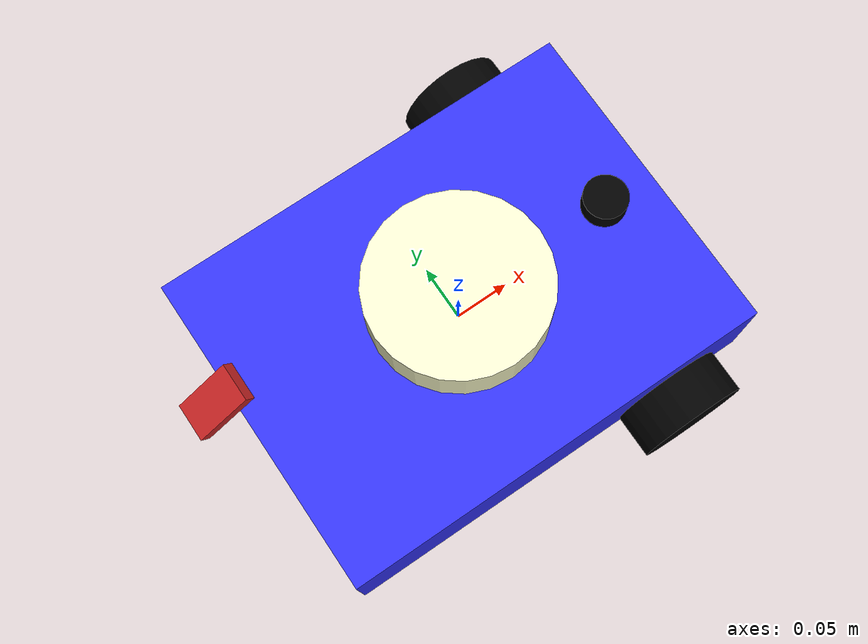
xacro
<?xml version="1.0"?>
<robot xmlns:xacro="http://www.ros.org/wiki/xacro" name="mybot">

    <xacro:include filename="$(find mybot)/urdf/mybot_core.xacro"/>
    <xacro:include filename="$(find mybot)/urdf/lidar.xacro"/>
    <!--xacro:include filename="$(find mybot)/urdf/camera.xacro"/-->
    <xacro:include filename="$(find mybot)/urdf/depth_camera.xacro"/>
    <xacro:include filename="$(find mybot)/urdf/projector.xacro"/>
</robot>

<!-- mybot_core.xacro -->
<robot xmlns:xacro="http://www.ros.org/wiki/xacro">

    <xacro:include filename="$(find mybot)/urdf/inertial_macros.xacro"/>

    <xacro:property name="chassis_mass" value="0.5"/>
    <xacro:property name="chassis_width" value="0.3"/>
    <xacro:property name="chassis_height" value="0.1"/>
    <xacro:property name="chassis_depth" value="0.4"/>

    <xacro:property name="wheel_radius" value="0.05"/>
    <xacro:property name="wheel_length" value="0.04"/>
    <xacro:property name="wheel_mass" value="0.1"/>
    <xacro:property name="wheel_offset_x" value="0.12"/>
    <xacro:property name="wheel_offset_y" value="${(chassis_width+wheel_length)/2}"/>
    <xacro:property name="wheel_offset_z" value="-0.03"/>

    <xacro:property name="caster_radius" value="0.02"/>
    <xacro:property name="caster_mass" value="0.5"/>
    <xacro:property name="caster_offset_x" value="-0.18"/>
    <xacro:property name="caster_offset_z" value="${wheel_offset_z-wheel_radius+caster_radius}"/>

    <xacro:property name="top_mass" value="0.05"/>
    <xacro:property name="top_length" value="0.1"/>
    <xacro:property name="top_radius" value="0.08"/>

    <xacro:property name="ext_radius" value="0.02"/>
    <xacro:property name="ext_length" value="0.1"/>
    <xacro:property name="ext_mass" value="0.02"/>

    <material name="white">
        <color rgba="1.0 1.0 0.8 1"/>
    </material>

    <material name="blue">
        <color rgba="0.2 0.2 1 1"/>
    </material>

    <material name="black">
        <color rgba="0.0 0.0 0.0 1.0"/>
    </material>

    <!--base link-->
    <link name="mybot/base_link">

    </link>

    <!--chassis link-->
    <link name="mybot/chassis_link">
        <xacro:inertial_box mass="${chassis_mass}" x="${chassis_depth}" y="${chassis_width}" z="${chassis_height}">
            <origin xyz="0.0 0.0 0.0"/>
        </xacro:inertial_box>
        <visual>
            <origin xyz="0.0 0.0 0.0"/>
            <geometry>
                <box size="${chassis_depth} ${chassis_width} ${chassis_height}"/>
            </geometry>
            <material name="blue"/>
        </visual>
        <collision>
            <origin xyz="0.0 0.0 0.0"/>
            <geometry>
                <box size="${chassis_depth} ${chassis_width} ${chassis_height}"/>
            </geometry>
        </collision>
    </link>

    <joint name="mybot/chassis_joint" type="fixed">
        <origin xyz="0.0 0.0 0.0" rpy="0.0 0.0 0.0"/>
        <parent link="mybot/base_link"/>
        <child link="mybot/chassis_link"/>
    </joint>

    <gazebo reference="mybot/chassis_link">
        <material>Gazebo/Blue</material>
    </gazebo>

    <!--wheel xacro-->
    <xacro:macro name="wheel" params="name side x y">
        <link name="mybot/wheel_${name}_link">
            <xacro:inertial_cylinder mass="${wheel_mass}" length="${wheel_length}" radius="${wheel_radius}">
                <origin xyz="0.0 0.0 0.0" rpy="0.0 0.0 0.0"/>
            </xacro:inertial_cylinder>
            <visual>
                <origin xyz="0.0 0.0 0.0" rpy="0.0 0.0 0.0"/>
                <geometry>
                    <cylinder radius="${wheel_radius}" length="${wheel_length}"/>
                </geometry>
                <material name="black"/>
            </visual>
            <collision>
                <origin xyz="0.0 0.0 0.0" rpy="0.0 0.0 0.0"/>
                <geometry>
                    <cylinder radius="${wheel_radius}" length="${wheel_length}"/>
                </geometry>
            </collision>
        </link>

        <joint name="mybot/wheel_${name}_joint" type="continuous">
            <origin xyz="${x} ${y} ${wheel_offset_z}" rpy="${-side*pi/2} 0.0 0.0"/>
            <parent link="mybot/base_link"/>
            <child link="mybot/wheel_${name}_link"/>
            <axis xyz="0.0 0.0 ${side}"/>
        </joint>

        <!--wheel motor-->
        <transmission name="mybot/wheel_${name}_joint_trans">
            <type>transmission/SimpleTransmission</type>
            <joint name="mybot/wheel_${name}_joint">
                <hardwareInterface>hardware_interface/VelocityJointInterface</hardwareInterface>
            </joint>
            <actuator name="mybot/wheel_${name}_joint_motor">
                <hardwareInterface>hardware_interface/VelocityJointInterface</hardwareInterface>
                <mechanicalReduction>1</mechanicalReduction>
            </actuator>
        </transmission>

        <gazebo reference="mybot/wheel_${name}_link">
            <material>Gazebo/Black</material>
        </gazebo>

    </xacro:macro>

    <!--wheel creating using xacro:macro-->
    <xacro:wheel name="right" side="-1" x="${wheel_offset_x}" y="${wheel_offset_y}"/>
    <xacro:wheel name="left" side="1" x="${wheel_offset_x}" y="${-wheel_offset_y}"/>

    <!--caster wheel-->
    <link name="mybot/caster_link">
        <visual>
            <geometry>
                <sphere radius="${caster_radius}"/>
            </geometry>
            <material name="white"/>
        </visual>
        <collision>
            <geometry>
                <sphere radius="${caster_radius}"/>
            </geometry>
        </collision>
        <xacro:inertial_sphere mass="${caster_mass}" radius="${caster_radius}">
            <origin xyz="0 0 0" rpy="0 0 0"/>
        </xacro:inertial_sphere>
    </link>

    <joint name="mybot/caster_joint" type="fixed">
        <parent link="mybot/chassis_link"/>
        <child link="mybot/caster_link"/>
        <origin xyz="${caster_offset_x} 0 ${caster_offset_z}"/>
    </joint>

    <gazebo reference="mybot/caster_link">
        <material>Gazebo/White</material>
        <mu1>0.0001</mu1>
        <mu2>0.0001</mu2>
    </gazebo>

    <!--top link-->
    <link name="mybot/top_link">
        <xacro:inertial_cylinder mass="${top_mass}" length="${top_length}" radius="${top_radius}">
            <origin xyz="0.0 0.0 0.0"/>
        </xacro:inertial_cylinder>
        <visual>
            <geometry>
                <cylinder radius="${top_radius}" length="${top_length}"/>
            </geometry>
            <material name="white"/>
        </visual>
        <collision>
            <geometry>
                <cylinder radius="${top_radius}" length="${top_length}"/>
            </geometry>
        </collision>
    </link>

    <joint name="mybot/top_joint" type="fixed">
        <origin xyz="0.0 0.0 ${chassis_height/2}"/>
        <parent link="mybot/chassis_link"/>
        <child link="mybot/top_link"/>
    </joint>

    <gazebo reference="mybot/top_link">
        <material>Gazebo/White</material>
    </gazebo>

    <!--extension link-->
    <link name="mybot/ext_link">
        <xacro:inertial_cylinder mass="${ext_mass}" length="${ext_length}" radius="${ext_radius}">
            <origin xyz="0.0 0.0 0.0"/>
        </xacro:inertial_cylinder>
        <visual>
            <origin xyz="0.0 0.0 0.0"/>
            <geometry>
                <cylinder radius="${ext_radius}" length="${ext_length}"/>
            </geometry>
            <material name="black"/>
        </visual>
        <collision>
            <origin xyz="0.0 0.0 0.0"/>
            <geometry>
                <cylinder radius="${ext_radius}" length="${ext_length}"/>
            </geometry>
        </collision>
    </link>

    <joint name="mybot/ext_joint" type="prismatic">
        <origin xyz="${top_radius/2} 0.0 ${-top_length/4}"/>
        <parent link="mybot/top_link"/>
        <child link="mybot/ext_link"/>
        <axis xyz="0.0 0.0 1.0"/>
        <limit lower="0.0" upper="${ext_length}" effort="100.0" velocity="0.2"/>
    </joint>

    <!--extension motor-->
    <transmission name="mybot/ext_joint_trans">
        <type>transmission/SimpleTransmission</type>
        <joint name="mybot/ext_joint">
            <hardwareInterface>hardware_interface/PositionJointInterface</hardwareInterface>
        </joint>
        <actuator name="mybot/ext_joint_motor">
            <hardwareInterface>hardware_interface/PositionJointInterface</hardwareInterface>
            <mechanicalReduction>1</mechanicalReduction>
        </actuator>
    </transmission>

    <gazebo reference="mybot/ext_link">
        <material>Gazebo/Black</material>
    </gazebo>

    <!--gazebo ros control plugin-->
    <gazebo>
        <plugin name="gazebo_ros_control" filename="libgazebo_ros_control.so">
            <robotSimType>gazebo_ros_control/DefaultRobotHWSim</robotSimType>
            <legacyModeNS>true</legacyModeNS>
        </plugin>
    </gazebo>

</robot>

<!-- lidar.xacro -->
<robot xmlns:xacro="http://www.ros.org/wiki/xacro">

    <!--lidar link-->
    <xacro:include filename="$(find mybot)/urdf/inertial_macros.xacro"/>

    <link name="mybot/lidar_link">
        <xacro:inertial_cylinder mass="0.02" length="0.02" radius="0.02">
            <origin xyz="0 0 0" rpy="0 0 0"/>
        </xacro:inertial_cylinder>
        <visual>
            <origin xyz="0.0 0.0 0.0"/>
            <geometry>
                <cylinder radius="0.02" length="0.02"/>
            </geometry>
            <material name="black"/>
        </visual>
        <collision>
            <origin xyz="0.0 0.0 0.0"/>
            <geometry>
                <cylinder radius="0.02" length="0.02"/>
            </geometry>
        </collision>
    </link>

    <joint name="mybot/lidar_joint" type="fixed">
        <origin xyz="0.15 0.0 0.06" rpy="0.0 0.0 0.0"/>
        <parent link="mybot/chassis_link"/>
        <child link="mybot/lidar_link"/>
    </joint>

    <gazebo reference="mybot/lidar_link">
        <material>Gazebo/Black</material>

        <sensor name="mybot/lidar" type="ray">
            <pose> 0 0 0 0 0 0 </pose>
            <visualize>false</visualize>
            <update_rate>10</update_rate>
            <ray>
                <scan>
                    <horizontal>
                        <samples>180</samples>
                        <min_angle>-1.57</min_angle>
                        <max_angle>1.57</max_angle>
                    </horizontal>
                </scan>
                <range>
                    <min>0.3</min>
                    <max>12</max>
                </range>
            </ray>

            <plugin name="lidar_controller" filename="libgazebo_ros_laser.so">
                <topicName>laser/scan</topicName>
                <outputType>sensor_msgs/LaserScan</outputType>
                <frameName>lidar_link</frameName>
            </plugin>
        </sensor>
    </gazebo>

</robot>

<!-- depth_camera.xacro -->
<robot xmlns:xacro="http://www.ros.org/wiki/xacro">

    <xacro:include filename="$(find mybot)/urdf/inertial_macros.xacro"/>

    <!--camera link-->
    <link name="mybot/camera_link">
        <xacro:inertial_box mass="0.03" x="0.01" y="0.02" z="0.01">
            <origin xyz="0 0 0" rpy="0 0 0"/>
        </xacro:inertial_box>
        <visual>
            <origin xyz="0.0 0.0 0.0"/>
            <geometry>
                <box size="0.01 0.02 0.01"/>
            </geometry>
            <material name="black"/>
        </visual>
        <collision>
            <origin xyz="0.0 0.0 0.0"/>
            <geometry>
                <box size="0.01 0.02 0.01"/>
            </geometry>
        </collision>
    </link>

    <joint name="mybot/camera_joint" type="fixed">
        <origin xyz="0.205 0.0 0.0" rpy="0.0 0.0 0.0"/>
        <parent link="mybot/chassis_link"/>
        <child link="mybot/camera_link"/>
    </joint>

    <!--camera optical link-->
    <link name="mybot/camera_optical_link"></link>

    <joint name="mybot/camera_optical_joint" type="fixed">
        <origin xyz="0.0 0.0 0.0" rpy="-1.57 0.0 -1.57"/>
        <parent link="mybot/camera_link"/>
        <child link="mybot/camera_optical_link"/>
    </joint>

    <!-- depth camera -->
    <gazebo reference="mybot/camera_link">
        <material>Gazebo/Black</material>
        <sensor type="depth" name="depth_camera">
            <update_rate>30.0</update_rate>
            <visualize>true</visualize>
            <camera>
                <horizontal_fov>1.3962634</horizontal_fov>
                <image>
                    <width>800</width>
                    <height>800</height>
                    <format>B8G8R8</format>
                </image>
                <clip>
                    <near>0.02</near>
                    <far>8.0</far>
                </clip>
                <noise>
                    <type>gaussian</type>
                    <mean>0.0</mean>
                    <stddev>0.007</stddev>
                </noise>
            </camera>

            <plugin name="depth_camera_controller" filename="libgazebo_ros_openni_kinect.so">
                <cameraName>depth_camera</cameraName>
                <frameName>camera_optical_link</frameName>
                <min_depth>0.1</min_depth>
                <max_depth>100</max_depth>
            </plugin>
        </sensor>
    </gazebo>
</robot>

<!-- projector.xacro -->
<robot xmlns:xacro="http://www.ros.org/wiki/xacro">

    <xacro:include filename="$(find mybot)/urdf/inertial_macros.xacro"/>

    <!--projector link-->
    <link name="mybot/projector_link">
        <xacro:inertial_box mass="0.03" x="0.01" y="0.03" z="0.05">
            <origin xyz="0 0 0" rpy="0 0 0"/>
        </xacro:inertial_box>
        <visual>
            <origin xyz="0.0 0.0 0.0"/>
            <geometry>
                <box size="0.01 0.03 0.05"/>
            </geometry>
            <material name="red"/>
        </visual>
        <collision>
            <origin xyz="0.0 0.0 0.0"/>
            <geometry>
                <box size="0.01 0.03 0.05"/>
            </geometry>
        </collision>
    </link>

    <joint name="mybot/projector_joint" type="fixed">
        <origin xyz="-0.205 0.0 0.2" rpy="0.0 1.0 0.0"/>
        <parent link="mybot/chassis_link"/>
        <child link="mybot/projector_link"/>
    </joint>

    <!-- projector -->
    <gazebo reference="mybot/projector_link">
        <material>Gazebo/Red</material>
        <projector name="projector1">
            <pose> 0 0 0 0 0 0 </pose>
            <texture>fungus_normal.png</texture>
            <near_clip>0.01</near_clip>
            <far_clip>3.0</far_clip>
            <fov>0.5</fov>
            <plugin name="projector_controller" filename="libgazebo_ros_projector.so">
                <update_rate>10.0</update_rate>
            </plugin>
        </projector>
    </gazebo>
</robot>
